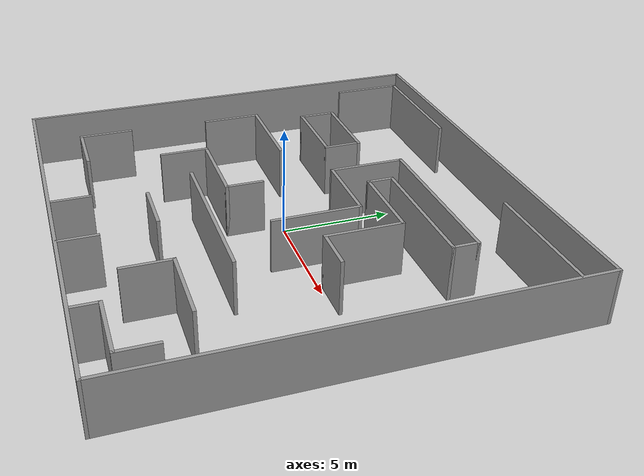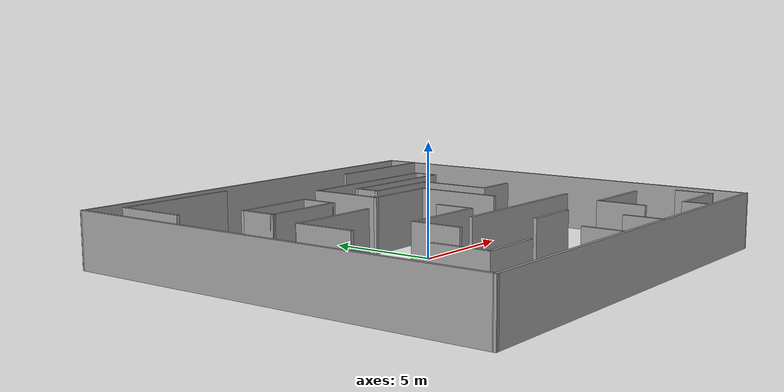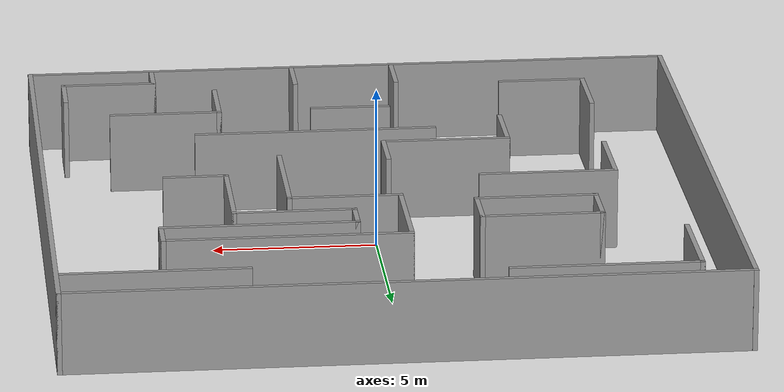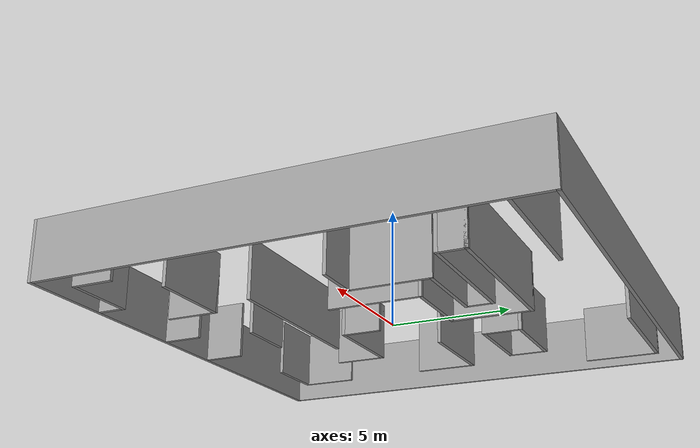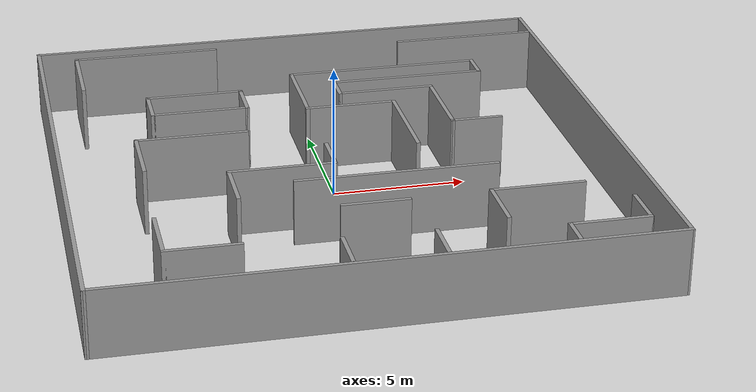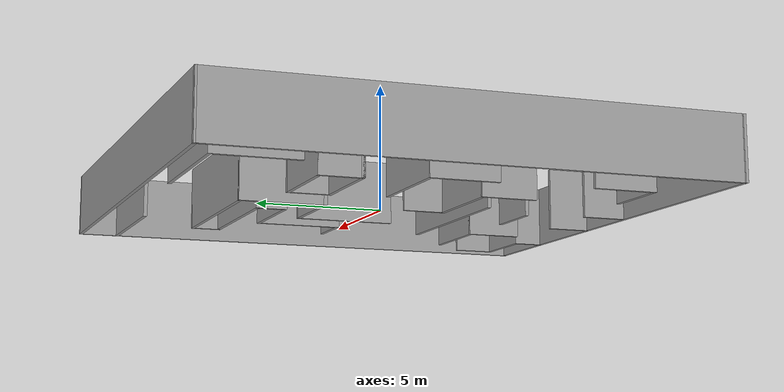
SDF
<?xml version='1.0'?>
<sdf version='1.7'>
  <model name='labyrinth_big_world'>
    <pose>-0.011313 -0.055662 0 0 -0 0</pose>
    <link name='Wall_10'>
      <collision name='Wall_10_Collision'>
        <geometry>
          <box>
            <size>20.0263 0.15 2.5</size>
          </box>
        </geometry>
        <pose>0 0 1.25 0 -0 0</pose>
      </collision>
      <visual name='Wall_10_Visual'>
        <pose>0 0 1.25 0 -0 0</pose>
        <geometry>
          <box>
            <size>20.0263 0.15 2.5</size>
          </box>
        </geometry>
        <material>
          <script>
            <uri>file://media/materials/scripts/gazebo.material</uri>
            <name>Gazebo/Grey</name>
          </script>
          <ambient>1 1 1 1</ambient>
        </material>
        <meta>
          <layer>0</layer>
        </meta>
      </visual>
      <pose>-10.1156 0 0 0 -0 -1.57212</pose>
    </link>
    <link name='Wall_12'>
      <collision name='Wall_12_Collision'>
        <geometry>
          <box>
            <size>20.3812 0.15 2.5</size>
          </box>
        </geometry>
        <pose>0 0 1.25 0 -0 0</pose>
      </collision>
      <visual name='Wall_12_Visual'>
        <pose>0 0 1.25 0 -0 0</pose>
        <geometry>
          <box>
            <size>20.3812 0.15 2.5</size>
          </box>
        </geometry>
        <material>
          <script>
            <uri>file://media/materials/scripts/gazebo.material</uri>
            <name>Gazebo/Grey</name>
          </script>
          <ambient>1 1 1 1</ambient>
        </material>
        <meta>
          <layer>0</layer>
        </meta>
      </visual>
      <pose>0.013136 9.92937 0 0 -0 0</pose>
    </link>
    <link name='Wall_20'>
      <collision name='Wall_20_Collision'>
        <geometry>
          <box>
            <size>1.75 0.15 2.5</size>
          </box>
        </geometry>
        <pose>0 0 1.25 0 -0 0</pose>
      </collision>
      <visual name='Wall_20_Visual'>
        <pose>0 0 1.25 0 -0 0</pose>
        <geometry>
          <box>
            <size>1.75 0.15 2.5</size>
          </box>
        </geometry>
        <material>
          <script>
            <uri>file://media/materials/scripts/gazebo.material</uri>
            <name>Gazebo/Grey</name>
          </script>
          <ambient>1 1 1 1</ambient>
        </material>
        <meta>
          <layer>0</layer>
        </meta>
      </visual>
      <pose>-1.41028 -8.97049 0 0 -0 1.5708</pose>
    </link>
    <link name='Wall_23'>
      <collision name='Wall_23_Collision'>
        <geometry>
          <box>
            <size>20 0.15 2.5</size>
          </box>
        </geometry>
        <pose>0 0 1.25 0 -0 0</pose>
      </collision>
      <visual name='Wall_23_Visual'>
        <pose>0 0 1.25 0 -0 0</pose>
        <geometry>
          <box>
            <size>20 0.15 2.5</size>
          </box>
        </geometry>
        <material>
          <script>
            <uri>file://media/materials/scripts/gazebo.material</uri>
            <name>Gazebo/Grey</name>
          </script>
          <ambient>1 1 1 1</ambient>
        </material>
        <meta>
          <layer>0</layer>
        </meta>
      </visual>
      <pose>10.1287 0.004373 0 0 -0 -1.5708</pose>
    </link>
    <link name='Wall_25'>
      <collision name='Wall_25_Collision'>
        <geometry>
          <box>
            <size>20.4074 0.15 2.5</size>
          </box>
        </geometry>
        <pose>0 0 1.25 0 -0 0</pose>
      </collision>
      <visual name='Wall_25_Visual'>
        <pose>0 0 1.25 0 -0 0</pose>
        <geometry>
          <box>
            <size>20.4074 0.15 2.5</size>
          </box>
        </geometry>
        <material>
          <script>
            <uri>file://media/materials/scripts/gazebo.material</uri>
            <name>Gazebo/Grey</name>
          </script>
          <ambient>1 1 1 1</ambient>
        </material>
        <meta>
          <layer>0</layer>
        </meta>
      </visual>
      <pose>1.8e-05 -9.92937 0 0 -0 0.000863</pose>
    </link>
    <link name='Wall_27'>
      <collision name='Wall_27_Collision'>
        <geometry>
          <box>
            <size>1.75 0.15 2.5</size>
          </box>
        </geometry>
        <pose>0 0 1.25 0 -0 0</pose>
      </collision>
      <visual name='Wall_27_Visual'>
        <pose>0 0 1.25 0 -0 0</pose>
        <geometry>
          <box>
            <size>1.75 0.15 2.5</size>
          </box>
        </geometry>
        <material>
          <script>
            <uri>file://media/materials/scripts/gazebo.material</uri>
            <name>Gazebo/Grey</name>
          </script>
          <ambient>1 1 1 1</ambient>
        </material>
        <meta>
          <layer>0</layer>
        </meta>
      </visual>
      <pose>1.79224 -9.05181 0 0 -0 1.5708</pose>
    </link>
    <link name='Wall_29'>
      <collision name='Wall_29_Collision'>
        <geometry>
          <box>
            <size>2.5 0.15 2.5</size>
          </box>
        </geometry>
        <pose>0 0 1.25 0 -0 0</pose>
      </collision>
      <visual name='Wall_29_Visual'>
        <pose>0 0 1.25 0 -0 0</pose>
        <geometry>
          <box>
            <size>2.5 0.15 2.5</size>
          </box>
        </geometry>
        <material>
          <script>
            <uri>file://media/materials/scripts/gazebo.material</uri>
            <name>Gazebo/Grey</name>
          </script>
          <ambient>1 1 1 1</ambient>
        </material>
        <meta>
          <layer>0</layer>
        </meta>
      </visual>
      <pose>0.267441 -5.79412 0 0 -0 3.14159</pose>
    </link>
    <link name='Wall_31'>
      <collision name='Wall_31_Collision'>
        <geometry>
          <box>
            <size>2.5 0.15 2.5</size>
          </box>
        </geometry>
        <pose>0 0 1.25 0 -0 0</pose>
      </collision>
      <visual name='Wall_31_Visual'>
        <pose>0 0 1.25 0 -0 0</pose>
        <geometry>
          <box>
            <size>2.5 0.15 2.5</size>
          </box>
        </geometry>
        <material>
          <script>
            <uri>file://media/materials/scripts/gazebo.material</uri>
            <name>Gazebo/Grey</name>
          </script>
          <ambient>1 1 1 1</ambient>
        </material>
        <meta>
          <layer>0</layer>
        </meta>
      </visual>
      <pose>-7.33757 -6.68928 0 0 -0 -1.5708</pose>
    </link>
    <link name='Wall_32'>
      <collision name='Wall_32_Collision'>
        <geometry>
          <box>
            <size>2.75 0.15 2.5</size>
          </box>
        </geometry>
        <pose>0 0 1.25 0 -0 0</pose>
      </collision>
      <visual name='Wall_32_Visual'>
        <pose>0 0 1.25 0 -0 0</pose>
        <geometry>
          <box>
            <size>2.75 0.15 2.5</size>
          </box>
        </geometry>
        <material>
          <script>
            <uri>file://media/materials/scripts/gazebo.material</uri>
            <name>Gazebo/Grey</name>
          </script>
          <ambient>1 1 1 1</ambient>
        </material>
        <meta>
          <layer>0</layer>
        </meta>
      </visual>
      <pose>-6.03757 -7.86428 0 0 -0 0</pose>
    </link>
    <link name='Wall_34'>
      <collision name='Wall_34_Collision'>
        <geometry>
          <box>
            <size>2.25 0.15 2.5</size>
          </box>
        </geometry>
        <pose>0 0 1.25 0 -0 0</pose>
      </collision>
      <visual name='Wall_34_Visual'>
        <pose>0 0 1.25 0 -0 0</pose>
        <geometry>
          <box>
            <size>2.25 0.15 2.5</size>
          </box>
        </geometry>
        <material>
          <script>
            <uri>file://media/materials/scripts/gazebo.material</uri>
            <name>Gazebo/Grey</name>
          </script>
          <ambient>1 1 1 1</ambient>
        </material>
        <meta>
          <layer>0</layer>
        </meta>
      </visual>
      <pose>4.39826 -6.75548 0 0 -0 1.5708</pose>
    </link>
    <link name='Wall_35'>
      <collision name='Wall_35_Collision'>
        <geometry>
          <box>
            <size>3.5 0.15 2.5</size>
          </box>
        </geometry>
        <pose>0 0 1.25 0 -0 0</pose>
      </collision>
      <visual name='Wall_35_Visual'>
        <pose>0 0 1.25 0 -0 0</pose>
        <geometry>
          <box>
            <size>3.5 0.15 2.5</size>
          </box>
        </geometry>
        <material>
          <script>
            <uri>file://media/materials/scripts/gazebo.material</uri>
            <name>Gazebo/Grey</name>
          </script>
          <ambient>1 1 1 1</ambient>
        </material>
        <meta>
          <layer>0</layer>
        </meta>
      </visual>
      <pose>6.07326 -5.70548 0 0 -0 0</pose>
    </link>
    <link name='Wall_37'>
      <collision name='Wall_37_Collision'>
        <geometry>
          <box>
            <size>2.70977 0.15 2.5</size>
          </box>
        </geometry>
        <pose>0 0 1.25 0 -0 0</pose>
      </collision>
      <visual name='Wall_37_Visual'>
        <pose>0 0 1.25 0 -0 0</pose>
        <geometry>
          <box>
            <size>2.70977 0.15 2.5</size>
          </box>
        </geometry>
        <material>
          <script>
            <uri>file://media/materials/scripts/gazebo.material</uri>
            <name>Gazebo/Grey</name>
          </script>
          <ambient>1 1 1 1</ambient>
        </material>
        <meta>
          <layer>0</layer>
        </meta>
      </visual>
      <pose>-7.21209 -0.42433 0 0 -0 1.5708</pose>
    </link>
    <link name='Wall_38'>
      <collision name='Wall_38_Collision'>
        <geometry>
          <box>
            <size>4.25 0.15 2.5</size>
          </box>
        </geometry>
        <pose>0 0 1.25 0 -0 0</pose>
      </collision>
      <visual name='Wall_38_Visual'>
        <pose>0 0 1.25 0 -0 0</pose>
        <geometry>
          <box>
            <size>4.25 0.15 2.5</size>
          </box>
        </geometry>
        <material>
          <script>
            <uri>file://media/materials/scripts/gazebo.material</uri>
            <name>Gazebo/Grey</name>
          </script>
          <ambient>1 1 1 1</ambient>
        </material>
        <meta>
          <layer>0</layer>
        </meta>
      </visual>
      <pose>-5.16209 0.87567 0 0 -0 0</pose>
    </link>
    <link name='Wall_42'>
      <collision name='Wall_42_Collision'>
        <geometry>
          <box>
            <size>4 0.15 2.5</size>
          </box>
        </geometry>
        <pose>0 0 1.25 0 -0 0</pose>
      </collision>
      <visual name='Wall_42_Visual'>
        <pose>0 0 1.25 0 -0 0</pose>
        <geometry>
          <box>
            <size>4 0.15 2.5</size>
          </box>
        </geometry>
        <material>
          <script>
            <uri>file://media/materials/scripts/gazebo.material</uri>
            <name>Gazebo/Grey</name>
          </script>
          <ambient>1 1 1 1</ambient>
        </material>
        <meta>
          <layer>0</layer>
        </meta>
      </visual>
      <pose>2.86043 0.561129 0 0 -0 1.5708</pose>
    </link>
    <link name='Wall_43'>
      <collision name='Wall_43_Collision'>
        <geometry>
          <box>
            <size>3.5 0.15 2.5</size>
          </box>
        </geometry>
        <pose>0 0 1.25 0 -0 0</pose>
      </collision>
      <visual name='Wall_43_Visual'>
        <pose>0 0 1.25 0 -0 0</pose>
        <geometry>
          <box>
            <size>3.5 0.15 2.5</size>
          </box>
        </geometry>
        <material>
          <script>
            <uri>file://media/materials/scripts/gazebo.material</uri>
            <name>Gazebo/Grey</name>
          </script>
          <ambient>1 1 1 1</ambient>
        </material>
        <meta>
          <layer>0</layer>
        </meta>
      </visual>
      <pose>1.18543 2.48613 0 0 -0 3.14159</pose>
    </link>
    <link name='Wall_44'>
      <collision name='Wall_44_Collision'>
        <geometry>
          <box>
            <size>3.5 0.15 2.5</size>
          </box>
        </geometry>
        <pose>0 0 1.25 0 -0 0</pose>
      </collision>
      <visual name='Wall_44_Visual'>
        <pose>0 0 1.25 0 -0 0</pose>
        <geometry>
          <box>
            <size>3.5 0.15 2.5</size>
          </box>
        </geometry>
        <material>
          <script>
            <uri>file://media/materials/scripts/gazebo.material</uri>
            <name>Gazebo/Grey</name>
          </script>
          <ambient>1 1 1 1</ambient>
        </material>
        <meta>
          <layer>0</layer>
        </meta>
      </visual>
      <pose>-0.489569 4.16113 0 0 -0 1.5708</pose>
    </link>
    <link name='Wall_45'>
      <collision name='Wall_45_Collision'>
        <geometry>
          <box>
            <size>7.5 0.15 2.5</size>
          </box>
        </geometry>
        <pose>0 0 1.25 0 -0 0</pose>
      </collision>
      <visual name='Wall_45_Visual'>
        <pose>0 0 1.25 0 -0 0</pose>
        <geometry>
          <box>
            <size>7.5 0.15 2.5</size>
          </box>
        </geometry>
        <material>
          <script>
            <uri>file://media/materials/scripts/gazebo.material</uri>
            <name>Gazebo/Grey</name>
          </script>
          <ambient>1 1 1 1</ambient>
        </material>
        <meta>
          <layer>0</layer>
        </meta>
      </visual>
      <pose>3.18543 5.83613 0 0 -0 0</pose>
    </link>
    <link name='Wall_46'>
      <collision name='Wall_46_Collision'>
        <geometry>
          <box>
            <size>1.25 0.15 2.5</size>
          </box>
        </geometry>
        <pose>0 0 1.25 0 -0 0</pose>
      </collision>
      <visual name='Wall_46_Visual'>
        <pose>0 0 1.25 0 -0 0</pose>
        <geometry>
          <box>
            <size>1.25 0.15 2.5</size>
          </box>
        </geometry>
        <material>
          <script>
            <uri>file://media/materials/scripts/gazebo.material</uri>
            <name>Gazebo/Grey</name>
          </script>
          <ambient>1 1 1 1</ambient>
        </material>
        <meta>
          <layer>0</layer>
        </meta>
      </visual>
      <pose>6.86043 5.28613 0 0 -0 -1.5708</pose>
    </link>
    <link name='Wall_47'>
      <collision name='Wall_47_Collision'>
        <geometry>
          <box>
            <size>6 0.15 2.5</size>
          </box>
        </geometry>
        <pose>0 0 1.25 0 -0 0</pose>
      </collision>
      <visual name='Wall_47_Visual'>
        <pose>0 0 1.25 0 -0 0</pose>
        <geometry>
          <box>
            <size>6 0.15 2.5</size>
          </box>
        </geometry>
        <material>
          <script>
            <uri>file://media/materials/scripts/gazebo.material</uri>
            <name>Gazebo/Grey</name>
          </script>
          <ambient>1 1 1 1</ambient>
        </material>
        <meta>
          <layer>0</layer>
        </meta>
      </visual>
      <pose>3.93543 4.73613 0 0 -0 3.14159</pose>
    </link>
    <link name='Wall_48'>
      <collision name='Wall_48_Collision'>
        <geometry>
          <box>
            <size>1.25 0.15 2.5</size>
          </box>
        </geometry>
        <pose>0 0 1.25 0 -0 0</pose>
      </collision>
      <visual name='Wall_48_Visual'>
        <pose>0 0 1.25 0 -0 0</pose>
        <geometry>
          <box>
            <size>1.25 0.15 2.5</size>
          </box>
        </geometry>
        <material>
          <script>
            <uri>file://media/materials/scripts/gazebo.material</uri>
            <name>Gazebo/Grey</name>
          </script>
          <ambient>1 1 1 1</ambient>
        </material>
        <meta>
          <layer>0</layer>
        </meta>
      </visual>
      <pose>1.01043 4.18613 0 0 -0 -1.5708</pose>
    </link>
    <link name='Wall_49'>
      <collision name='Wall_49_Collision'>
        <geometry>
          <box>
            <size>3.75 0.15 2.5</size>
          </box>
        </geometry>
        <pose>0 0 1.25 0 -0 0</pose>
      </collision>
      <visual name='Wall_49_Visual'>
        <pose>0 0 1.25 0 -0 0</pose>
        <geometry>
          <box>
            <size>3.75 0.15 2.5</size>
          </box>
        </geometry>
        <material>
          <script>
            <uri>file://media/materials/scripts/gazebo.material</uri>
            <name>Gazebo/Grey</name>
          </script>
          <ambient>1 1 1 1</ambient>
        </material>
        <meta>
          <layer>0</layer>
        </meta>
      </visual>
      <pose>2.81043 3.63613 0 0 -0 0</pose>
    </link>
    <link name='Wall_50'>
      <collision name='Wall_50_Collision'>
        <geometry>
          <box>
            <size>3.5 0.15 2.5</size>
          </box>
        </geometry>
        <pose>0 0 1.25 0 -0 0</pose>
      </collision>
      <visual name='Wall_50_Visual'>
        <pose>0 0 1.25 0 -0 0</pose>
        <geometry>
          <box>
            <size>3.5 0.15 2.5</size>
          </box>
        </geometry>
        <material>
          <script>
            <uri>file://media/materials/scripts/gazebo.material</uri>
            <name>Gazebo/Grey</name>
          </script>
          <ambient>1 1 1 1</ambient>
        </material>
        <meta>
          <layer>0</layer>
        </meta>
      </visual>
      <pose>4.61043 1.96113 0 0 -0 -1.5708</pose>
    </link>
    <link name='Wall_51'>
      <collision name='Wall_51_Collision'>
        <geometry>
          <box>
            <size>2 0.15 2.5</size>
          </box>
        </geometry>
        <pose>0 0 1.25 0 -0 0</pose>
      </collision>
      <visual name='Wall_51_Visual'>
        <pose>0 0 1.25 0 -0 0</pose>
        <geometry>
          <box>
            <size>2 0.15 2.5</size>
          </box>
        </geometry>
        <material>
          <script>
            <uri>file://media/materials/scripts/gazebo.material</uri>
            <name>Gazebo/Grey</name>
          </script>
          <ambient>1 1 1 1</ambient>
        </material>
        <meta>
          <layer>0</layer>
        </meta>
      </visual>
      <pose>5.53543 0.286129 0 0 -0 0</pose>
    </link>
    <link name='Wall_53'>
      <collision name='Wall_53_Collision'>
        <geometry>
          <box>
            <size>3.25 0.15 2.5</size>
          </box>
        </geometry>
        <pose>0 0 1.25 0 -0 0</pose>
      </collision>
      <visual name='Wall_53_Visual'>
        <pose>0 0 1.25 0 -0 0</pose>
        <geometry>
          <box>
            <size>3.25 0.15 2.5</size>
          </box>
        </geometry>
        <material>
          <script>
            <uri>file://media/materials/scripts/gazebo.material</uri>
            <name>Gazebo/Grey</name>
          </script>
          <ambient>1 1 1 1</ambient>
        </material>
        <meta>
          <layer>0</layer>
        </meta>
      </visual>
      <pose>-8.65573 7.54886 0 0 -0 1.5708</pose>
    </link>
    <link name='Wall_54'>
      <collision name='Wall_54_Collision'>
        <geometry>
          <box>
            <size>5.75 0.15 2.5</size>
          </box>
        </geometry>
        <pose>0 0 1.25 0 -0 0</pose>
      </collision>
      <visual name='Wall_54_Visual'>
        <pose>0 0 1.25 0 -0 0</pose>
        <geometry>
          <box>
            <size>5.75 0.15 2.5</size>
          </box>
        </geometry>
        <material>
          <script>
            <uri>file://media/materials/scripts/gazebo.material</uri>
            <name>Gazebo/Grey</name>
          </script>
          <ambient>1 1 1 1</ambient>
        </material>
        <meta>
          <layer>0</layer>
        </meta>
      </visual>
      <pose>-5.85573 9.09886 0 0 -0 0</pose>
    </link>
    <link name='Wall_56'>
      <collision name='Wall_56_Collision'>
        <geometry>
          <box>
            <size>1.75 0.15 2.5</size>
          </box>
        </geometry>
        <pose>0 0 1.25 0 -0 0</pose>
      </collision>
      <visual name='Wall_56_Visual'>
        <pose>0 0 1.25 0 -0 0</pose>
        <geometry>
          <box>
            <size>1.75 0.15 2.5</size>
          </box>
        </geometry>
        <material>
          <script>
            <uri>file://media/materials/scripts/gazebo.material</uri>
            <name>Gazebo/Grey</name>
          </script>
          <ambient>1 1 1 1</ambient>
        </material>
        <meta>
          <layer>0</layer>
        </meta>
      </visual>
      <pose>-6.32371 3.83994 0 0 -0 -1.5708</pose>
    </link>
    <link name='Wall_57'>
      <collision name='Wall_57_Collision'>
        <geometry>
          <box>
            <size>3.75 0.15 2.5</size>
          </box>
        </geometry>
        <pose>0 0 1.25 0 -0 0</pose>
      </collision>
      <visual name='Wall_57_Visual'>
        <pose>0 0 1.25 0 -0 0</pose>
        <geometry>
          <box>
            <size>3.75 0.15 2.5</size>
          </box>
        </geometry>
        <material>
          <script>
            <uri>file://media/materials/scripts/gazebo.material</uri>
            <name>Gazebo/Grey</name>
          </script>
          <ambient>1 1 1 1</ambient>
        </material>
        <meta>
          <layer>0</layer>
        </meta>
      </visual>
      <pose>-4.52371 3.03994 0 0 -0 0</pose>
    </link>
    <link name='Wall_58'>
      <collision name='Wall_58_Collision'>
        <geometry>
          <box>
            <size>1.75 0.15 2.5</size>
          </box>
        </geometry>
        <pose>0 0 1.25 0 -0 0</pose>
      </collision>
      <visual name='Wall_58_Visual'>
        <pose>0 0 1.25 0 -0 0</pose>
        <geometry>
          <box>
            <size>1.75 0.15 2.5</size>
          </box>
        </geometry>
        <material>
          <script>
            <uri>file://media/materials/scripts/gazebo.material</uri>
            <name>Gazebo/Grey</name>
          </script>
          <ambient>1 1 1 1</ambient>
        </material>
        <meta>
          <layer>0</layer>
        </meta>
      </visual>
      <pose>-2.72371 3.83994 0 0 -0 1.5708</pose>
    </link>
    <link name='Wall_59'>
      <collision name='Wall_59_Collision'>
        <geometry>
          <box>
            <size>3.75 0.15 2.5</size>
          </box>
        </geometry>
        <pose>0 0 1.25 0 -0 0</pose>
      </collision>
      <visual name='Wall_59_Visual'>
        <pose>0 0 1.25 0 -0 0</pose>
        <geometry>
          <box>
            <size>3.75 0.15 2.5</size>
          </box>
        </geometry>
        <material>
          <script>
            <uri>file://media/materials/scripts/gazebo.material</uri>
            <name>Gazebo/Grey</name>
          </script>
          <ambient>1 1 1 1</ambient>
        </material>
        <meta>
          <layer>0</layer>
        </meta>
      </visual>
      <pose>-4.52371 4.63994 0 0 -0 3.14159</pose>
    </link>
    <link name='Wall_61'>
      <collision name='Wall_61_Collision'>
        <geometry>
          <box>
            <size>2.25 0.15 2.5</size>
          </box>
        </geometry>
        <pose>0 0 1.25 0 -0 0</pose>
      </collision>
      <visual name='Wall_61_Visual'>
        <pose>0 0 1.25 0 -0 0</pose>
        <geometry>
          <box>
            <size>2.25 0.15 2.5</size>
          </box>
        </geometry>
        <material>
          <script>
            <uri>file://media/materials/scripts/gazebo.material</uri>
            <name>Gazebo/Grey</name>
          </script>
          <ambient>1 1 1 1</ambient>
        </material>
        <meta>
          <layer>0</layer>
        </meta>
      </visual>
      <pose>-4.29978 -3.46833 0 0 -0 1.5708</pose>
    </link>
    <link name='Wall_62'>
      <collision name='Wall_62_Collision'>
        <geometry>
          <box>
            <size>4 0.15 2.5</size>
          </box>
        </geometry>
        <pose>0 0 1.25 0 -0 0</pose>
      </collision>
      <visual name='Wall_62_Visual'>
        <pose>0 0 1.25 0 -0 0</pose>
        <geometry>
          <box>
            <size>4 0.15 2.5</size>
          </box>
        </geometry>
        <material>
          <script>
            <uri>file://media/materials/scripts/gazebo.material</uri>
            <name>Gazebo/Grey</name>
          </script>
          <ambient>1 1 1 1</ambient>
        </material>
        <meta>
          <layer>0</layer>
        </meta>
      </visual>
      <pose>-2.37478 -2.41833 0 0 -0 0</pose>
    </link>
    <link name='Wall_63'>
      <collision name='Wall_63_Collision'>
        <geometry>
          <box>
            <size>1.75 0.15 2.5</size>
          </box>
        </geometry>
        <pose>0 0 1.25 0 -0 0</pose>
      </collision>
      <visual name='Wall_63_Visual'>
        <pose>0 0 1.25 0 -0 0</pose>
        <geometry>
          <box>
            <size>1.75 0.15 2.5</size>
          </box>
        </geometry>
        <material>
          <script>
            <uri>file://media/materials/scripts/gazebo.material</uri>
            <name>Gazebo/Grey</name>
          </script>
          <ambient>1 1 1 1</ambient>
        </material>
        <meta>
          <layer>0</layer>
        </meta>
      </visual>
      <pose>-0.449784 -1.61833 0 0 -0 1.5708</pose>
    </link>
    <link name='Wall_65'>
      <collision name='Wall_65_Collision'>
        <geometry>
          <box>
            <size>7.5 0.15 2.5</size>
          </box>
        </geometry>
        <pose>0 0 1.25 0 -0 0</pose>
      </collision>
      <visual name='Wall_65_Visual'>
        <pose>0 0 1.25 0 -0 0</pose>
        <geometry>
          <box>
            <size>7.5 0.15 2.5</size>
          </box>
        </geometry>
        <material>
          <script>
            <uri>file://media/materials/scripts/gazebo.material</uri>
            <name>Gazebo/Grey</name>
          </script>
          <ambient>1 1 1 1</ambient>
        </material>
        <meta>
          <layer>0</layer>
        </meta>
      </visual>
      <pose>1.55094 -3.60757 0 0 -0 0</pose>
    </link>
    <link name='Wall_67'>
      <collision name='Wall_67_Collision'>
        <geometry>
          <box>
            <size>5.75 0.15 2.5</size>
          </box>
        </geometry>
        <pose>0 0 1.25 0 -0 0</pose>
      </collision>
      <visual name='Wall_67_Visual'>
        <pose>0 0 1.25 0 -0 0</pose>
        <geometry>
          <box>
            <size>5.75 0.15 2.5</size>
          </box>
        </geometry>
        <material>
          <script>
            <uri>file://media/materials/scripts/gazebo.material</uri>
            <name>Gazebo/Grey</name>
          </script>
          <ambient>1 1 1 1</ambient>
        </material>
        <meta>
          <layer>0</layer>
        </meta>
      </visual>
      <pose>7.30276 8.38421 0 0 -0 3.14159</pose>
    </link>
    <link name='Wall_69'>
      <collision name='Wall_69_Collision'>
        <geometry>
          <box>
            <size>1.25 0.15 2.5</size>
          </box>
        </geometry>
        <pose>0 0 1.25 0 -0 0</pose>
      </collision>
      <visual name='Wall_69_Visual'>
        <pose>0 0 1.25 0 -0 0</pose>
        <geometry>
          <box>
            <size>1.25 0.15 2.5</size>
          </box>
        </geometry>
        <material>
          <script>
            <uri>file://media/materials/scripts/gazebo.material</uri>
            <name>Gazebo/Grey</name>
          </script>
          <ambient>1 1 1 1</ambient>
        </material>
        <meta>
          <layer>0</layer>
        </meta>
      </visual>
      <pose>6.27524 -9.28114 0 0 -0 1.5708</pose>
    </link>
    <link name='Wall_70'>
      <collision name='Wall_70_Collision'>
        <geometry>
          <box>
            <size>3 0.15 2.5</size>
          </box>
        </geometry>
        <pose>0 0 1.25 0 -0 0</pose>
      </collision>
      <visual name='Wall_70_Visual'>
        <pose>0 0 1.25 0 -0 0</pose>
        <geometry>
          <box>
            <size>3 0.15 2.5</size>
          </box>
        </geometry>
        <material>
          <script>
            <uri>file://media/materials/scripts/gazebo.material</uri>
            <name>Gazebo/Grey</name>
          </script>
          <ambient>1 1 1 1</ambient>
        </material>
        <meta>
          <layer>0</layer>
        </meta>
      </visual>
      <pose>7.70024 -8.73114 0 0 -0 0</pose>
    </link>
    <link name='Wall_71'>
      <collision name='Wall_71_Collision'>
        <geometry>
          <box>
            <size>1.75 0.15 2.5</size>
          </box>
        </geometry>
        <pose>0 0 1.25 0 -0 0</pose>
      </collision>
      <visual name='Wall_71_Visual'>
        <pose>0 0 1.25 0 -0 0</pose>
        <geometry>
          <box>
            <size>1.75 0.15 2.5</size>
          </box>
        </geometry>
        <material>
          <script>
            <uri>file://media/materials/scripts/gazebo.material</uri>
            <name>Gazebo/Grey</name>
          </script>
          <ambient>1 1 1 1</ambient>
        </material>
        <meta>
          <layer>0</layer>
        </meta>
      </visual>
      <pose>9.12524 -7.93114 0 0 -0 1.5708</pose>
    </link>
    <static>1</static>
  </model>
</sdf>
